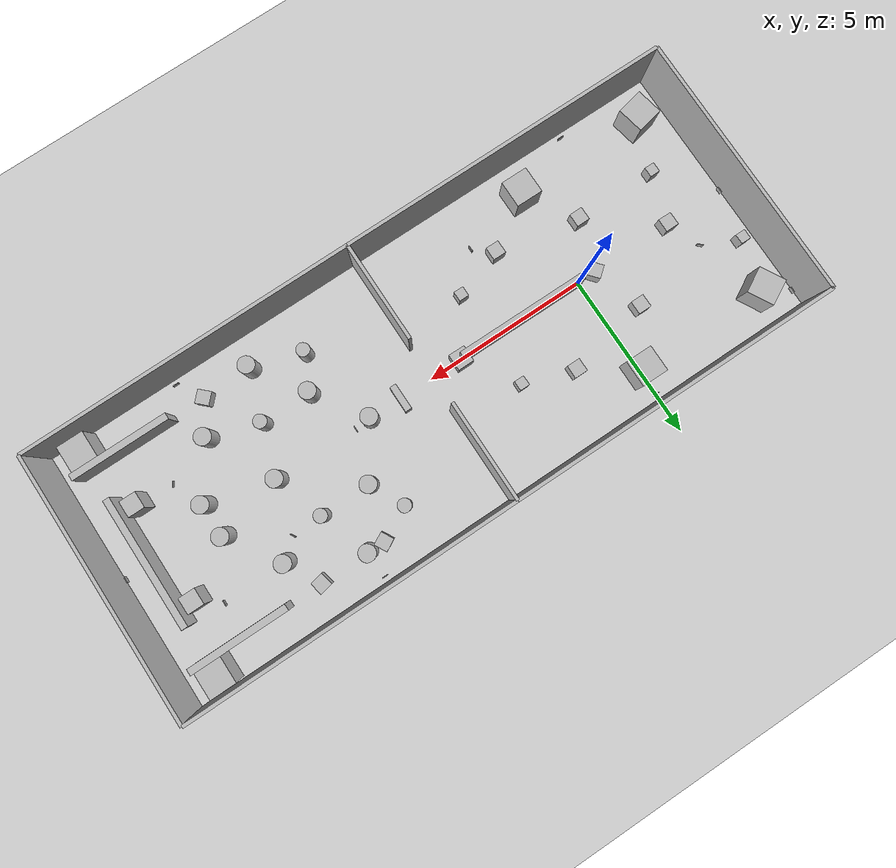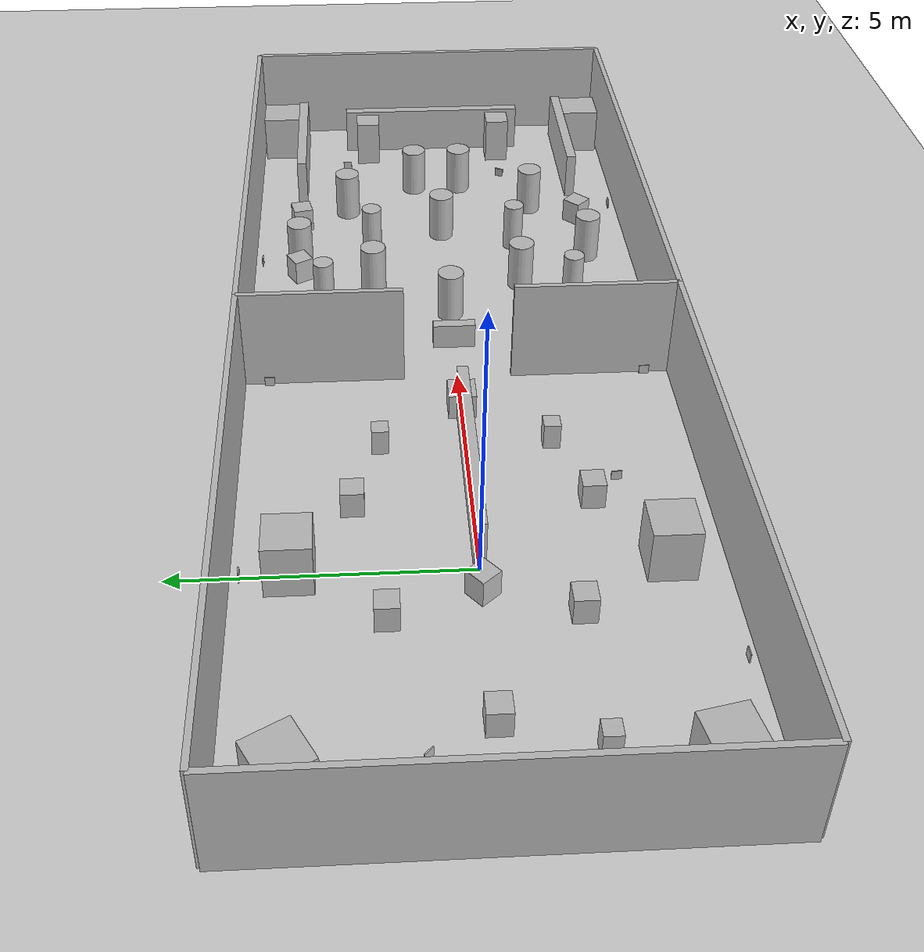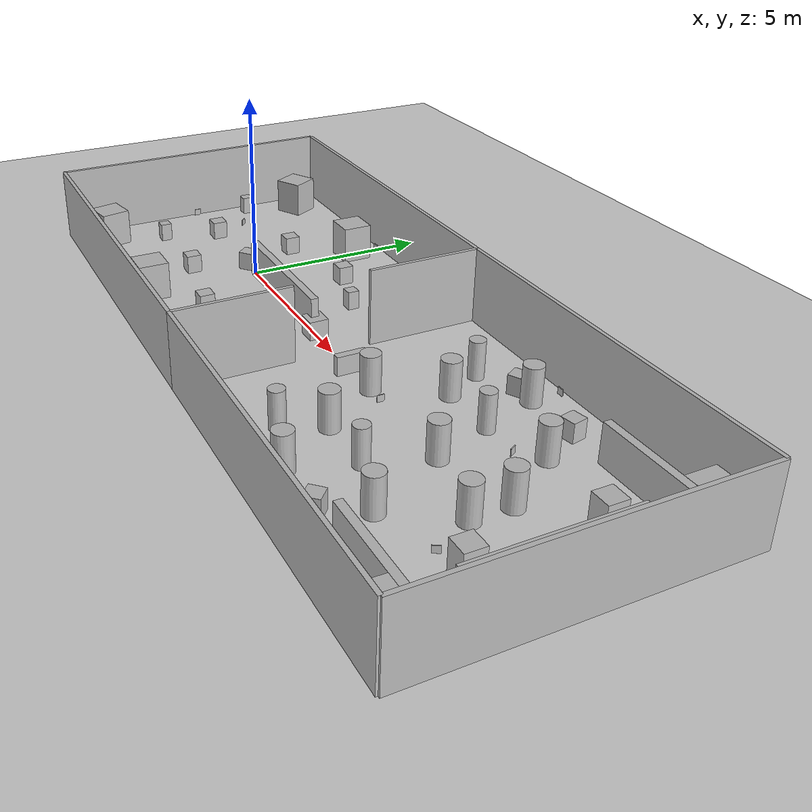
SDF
<?xml version="1.0" ?>
<sdf version="1.6">
  <world name="sar_room_world">

    <plugin name="gazebo_ros_factory" filename="libgazebo_ros_factory.so" />

    <include>
      <uri>model://ground_plane</uri>
    </include>
    <include>
      <uri>model://sun</uri>
    </include>

    <model name="room_structure">
      <static>true</static>
      <link name="walls">
        <pose>0 0 0 0 0 0</pose>
        <collision name="c_walls">
          <geometry>
            <box>
              <size>0.1 0.1 0.1</size>
            </box>
          </geometry>
        </collision>

        <visual name="r1_back">
          <pose>0 4 1 0 0 0</pose>
          <geometry>
            <box>
              <size>10 0.1 2</size>
            </box>
          </geometry>
        </visual>
        <collision name="c_r1_back">
          <pose>0 4 1 0 0 0</pose>
          <geometry>
            <box>
              <size>10 0.1 2</size>
            </box>
          </geometry>
        </collision>

        <visual name="r1_front">
          <pose>0 -4 1 0 0 0</pose>
          <geometry>
            <box>
              <size>10 0.1 2</size>
            </box>
          </geometry>
        </visual>
        <collision name="c_r1_front">
          <pose>0 -4 1 0 0 0</pose>
          <geometry>
            <box>
              <size>10 0.1 2</size>
            </box>
          </geometry>
        </collision>

        <visual name="r1_left">
          <pose>-5 0 1 0 0 0</pose>
          <geometry>
            <box>
              <size>0.1 8 2</size>
            </box>
          </geometry>
        </visual>
        <collision name="c_r1_left">
          <pose>-5 0 1 0 0 0</pose>
          <geometry>
            <box>
              <size>0.1 8 2</size>
            </box>
          </geometry>
        </collision>

        <visual name="r1_right_top">
          <pose>5 2.5 1 0 0 0</pose>
          <geometry>
            <box>
              <size>0.1 3 2</size>
            </box>
          </geometry>
        </visual>
        <collision name="c_r1_right_top">
          <pose>5 2.5 1 0 0 0</pose>
          <geometry>
            <box>
              <size>0.1 3 2</size>
            </box>
          </geometry>
        </collision>

        <visual name="r1_right_bot">
          <pose>5 -2.5 1 0 0 0</pose>
          <geometry>
            <box>
              <size>0.1 3 2</size>
            </box>
          </geometry>
        </visual>
        <collision name="c_r1_right_bot">
          <pose>5 -2.5 1 0 0 0</pose>
          <geometry>
            <box>
              <size>0.1 3 2</size>
            </box>
          </geometry>
        </collision>

        <visual name="r2_far">
          <pose>15 0 1 0 0 0</pose>
          <geometry>
            <box>
              <size>0.1 8 2</size>
            </box>
          </geometry>
        </visual>
        <collision name="c_r2_far">
          <pose>15 0 1 0 0 0</pose>
          <geometry>
            <box>
              <size>0.1 8 2</size>
            </box>
          </geometry>
        </collision>

        <visual name="r2_top">
          <pose>10 4 1 0 0 0</pose>
          <geometry>
            <box>
              <size>10 0.1 2</size>
            </box>
          </geometry>
        </visual>
        <collision name="c_r2_top">
          <pose>10 4 1 0 0 0</pose>
          <geometry>
            <box>
              <size>10 0.1 2</size>
            </box>
          </geometry>
        </collision>

        <visual name="r2_bot">
          <pose>10 -4 1 0 0 0</pose>
          <geometry>
            <box>
              <size>10 0.1 2</size>
            </box>
          </geometry>
        </visual>
        <collision name="c_r2_bot">
          <pose>10 -4 1 0 0 0</pose>
          <geometry>
            <box>
              <size>10 0.1 2</size>
            </box>
          </geometry>
        </collision>
      </link>
    </model>

    <model name="bar3"><static>true</static><link name="l"><pose>2 0 0.5 0 0 1.57</pose><visual name="v"><geometry><box><size>0.2 4 1</size></box></geometry></visual><collision name="c"><geometry><box><size>0.2 4 1</size></box></geometry></collision></link></model>

    <model name="b1"><static>true</static><link name="l"><pose>-4 3 0.5 0 0 0.5</pose><visual name="v"><geometry><box><size>0.8 0.8 1</size></box></geometry></visual><collision name="c"><geometry><box><size>0.8 0.8 1</size></box></geometry></collision></link></model>
    <model name="b2"><static>true</static><link name="l"><pose>-4 -3 0.5 0 0 0.2</pose><visual name="v"><geometry><box><size>0.8 0.8 1</size></box></geometry></visual><collision name="c"><geometry><box><size>0.8 0.8 1</size></box></geometry></collision></link></model>
    <model name="b3"><static>true</static><link name="l"><pose>0 3 0.5 0 0 0</pose><visual name="v"><geometry><box><size>0.8 0.8 1</size></box></geometry></visual><collision name="c"><geometry><box><size>0.8 0.8 1</size></box></geometry></collision></link></model>
    <model name="b4"><static>true</static><link name="l"><pose>0 -3 0.5 0 0 0</pose><visual name="v"><geometry><box><size>0.8 0.8 1</size></box></geometry></visual><collision name="c"><geometry><box><size>0.8 0.8 1</size></box></geometry></collision></link></model>

    <model name="d1"><static>true</static><link name="l"><pose>-3 0 0.25 0 0 0</pose><visual name="v"><geometry><box><size>0.4 0.4 0.5</size></box></geometry></visual><collision name="c"><geometry><box><size>0.4 0.4 0.5</size></box></geometry></collision></link></model>
    <model name="d2"><static>true</static><link name="l"><pose>-1 1.5 0.25 0 0 0</pose><visual name="v"><geometry><box><size>0.4 0.4 0.5</size></box></geometry></visual><collision name="c"><geometry><box><size>0.4 0.4 0.5</size></box></geometry></collision></link></model>
    <model name="d3"><static>true</static><link name="l"><pose>-1 -1.5 0.25 0 0 0</pose><visual name="v"><geometry><box><size>0.4 0.4 0.5</size></box></geometry></visual><collision name="c"><geometry><box><size>0.4 0.4 0.5</size></box></geometry></collision></link></model>
    <model name="d4"><static>true</static><link name="l"><pose>1.5 2 0.25 0 0 0</pose><visual name="v"><geometry><box><size>0.4 0.4 0.5</size></box></geometry></visual><collision name="c"><geometry><box><size>0.4 0.4 0.5</size></box></geometry></collision></link></model>
    <model name="d5"><static>true</static><link name="l"><pose>1.5 -2 0.25 0 0 0</pose><visual name="v"><geometry><box><size>0.4 0.4 0.5</size></box></geometry></visual><collision name="c"><geometry><box><size>0.4 0.4 0.5</size></box></geometry></collision></link></model>
    <model name="d6"><static>true</static><link name="l"><pose>4 0 0.25 0 0 0</pose><visual name="v"><geometry><box><size>0.5 0.5 0.5</size></box></geometry></visual><collision name="c"><geometry><box><size>0.5 0.5 0.5</size></box></geometry></collision></link></model>

    <model name="x1"><static>true</static><link name="l"><pose>-4.5 1.5 0.25 0 0 0</pose><visual name="v"><geometry><box><size>0.3 0.3 0.5</size></box></geometry></visual><collision name="c"><geometry><box><size>0.3 0.3 0.5</size></box></geometry></collision></link></model>
    <model name="x2"><static>true</static><link name="l"><pose>-3.5 -1.5 0.25 0 0 0</pose><visual name="v"><geometry><box><size>0.3 0.3 0.5</size></box></geometry></visual><collision name="c"><geometry><box><size>0.3 0.3 0.5</size></box></geometry></collision></link></model>
    <model name="x3"><static>true</static><link name="l"><pose>-0.5 0 0.25 0 0 0.7</pose><visual name="v"><geometry><box><size>0.4 0.4 0.5</size></box></geometry></visual><collision name="c"><geometry><box><size>0.4 0.4 0.5</size></box></geometry></collision></link></model>
    <model name="x4"><static>true</static><link name="l"><pose>3 1.5 0.25 0 0 0</pose><visual name="v"><geometry><box><size>0.3 0.3 0.5</size></box></geometry></visual><collision name="c"><geometry><box><size>0.3 0.3 0.5</size></box></geometry></collision></link></model>
    <model name="x5"><static>true</static><link name="l"><pose>3 -1.5 0.25 0 0 0</pose><visual name="v"><geometry><box><size>0.3 0.3 0.5</size></box></geometry></visual><collision name="c"><geometry><box><size>0.3 0.3 0.5</size></box></geometry></collision></link></model>
    <model name="door_block"><static>true</static><link name="l"><pose>6 0 0.25 0 0 0</pose><visual name="v"><geometry><box><size>0.2 0.8 0.5</size></box></geometry></visual><collision name="c"><geometry><box><size>0.2 0.8 0.5</size></box></geometry></collision></link></model>

    <model name="c1"><static>true</static><link name="l"><pose>7 0 0.5 0 0 0</pose><visual name="v"><geometry><cylinder><radius>0.25</radius><length>1</length></cylinder></geometry></visual><collision name="c"><geometry><cylinder><radius>0.25</radius><length>1</length></cylinder></geometry></collision></link></model>
    <model name="c2"><static>true</static><link name="l"><pose>8 1.5 0.5 0 0 0</pose><visual name="v"><geometry><cylinder><radius>0.25</radius><length>1</length></cylinder></geometry></visual><collision name="c"><geometry><cylinder><radius>0.25</radius><length>1</length></cylinder></geometry></collision></link></model>
    <model name="c3"><static>true</static><link name="l"><pose>8 -1.5 0.5 0 0 0</pose><visual name="v"><geometry><cylinder><radius>0.25</radius><length>1</length></cylinder></geometry></visual><collision name="c"><geometry><cylinder><radius>0.25</radius><length>1</length></cylinder></geometry></collision></link></model>
    <model name="c4"><static>true</static><link name="l"><pose>9 3 0.5 0 0 0</pose><visual name="v"><geometry><cylinder><radius>0.25</radius><length>1</length></cylinder></geometry></visual><collision name="c"><geometry><cylinder><radius>0.25</radius><length>1</length></cylinder></geometry></collision></link></model>
    <model name="c5"><static>true</static><link name="l"><pose>9 -3 0.5 0 0 0</pose><visual name="v"><geometry><cylinder><radius>0.25</radius><length>1</length></cylinder></geometry></visual><collision name="c"><geometry><cylinder><radius>0.25</radius><length>1</length></cylinder></geometry></collision></link></model>
    <model name="c6"><static>true</static><link name="l"><pose>10 0 0.5 0 0 0</pose><visual name="v"><geometry><cylinder><radius>0.25</radius><length>1</length></cylinder></geometry></visual><collision name="c"><geometry><cylinder><radius>0.25</radius><length>1</length></cylinder></geometry></collision></link></model>
    <model name="c7"><static>true</static><link name="l"><pose>11 2 0.5 0 0 0</pose><visual name="v"><geometry><cylinder><radius>0.25</radius><length>1</length></cylinder></geometry></visual><collision name="c"><geometry><cylinder><radius>0.25</radius><length>1</length></cylinder></geometry></collision></link></model>
    <model name="c8"><static>true</static><link name="l"><pose>11 -2 0.5 0 0 0</pose><visual name="v"><geometry><cylinder><radius>0.25</radius><length>1</length></cylinder></geometry></visual><collision name="c"><geometry><cylinder><radius>0.25</radius><length>1</length></cylinder></geometry></collision></link></model>
    <model name="c9"><static>true</static><link name="l"><pose>12 0.5 0.5 0 0 0</pose><visual name="v"><geometry><cylinder><radius>0.25</radius><length>1</length></cylinder></geometry></visual><collision name="c"><geometry><cylinder><radius>0.25</radius><length>1</length></cylinder></geometry></collision></link></model>
    <model name="c10"><static>true</static><link name="l"><pose>12 -0.5 0.5 0 0 0</pose><visual name="v"><geometry><cylinder><radius>0.25</radius><length>1</length></cylinder></geometry></visual><collision name="c"><geometry><cylinder><radius>0.25</radius><length>1</length></cylinder></geometry></collision></link></model>

    <model name="c11"><static>true</static><link name="l"><pose>7.5 2.5 0.5 0 0 0</pose><visual name="v"><geometry><cylinder><radius>0.2</radius><length>1</length></cylinder></geometry></visual><collision name="c"><geometry><cylinder><radius>0.2</radius><length>1</length></cylinder></geometry></collision></link></model>
    <model name="c12"><static>true</static><link name="l"><pose>7.5 -2.5 0.5 0 0 0</pose><visual name="v"><geometry><cylinder><radius>0.2</radius><length>1</length></cylinder></geometry></visual><collision name="c"><geometry><cylinder><radius>0.2</radius><length>1</length></cylinder></geometry></collision></link></model>
    <model name="c13"><static>true</static><link name="l"><pose>9.5 1.5 0.5 0 0 0</pose><visual name="v"><geometry><cylinder><radius>0.2</radius><length>1</length></cylinder></geometry></visual><collision name="c"><geometry><cylinder><radius>0.2</radius><length>1</length></cylinder></geometry></collision></link></model>
    <model name="c14"><static>true</static><link name="l"><pose>9.5 -1.5 0.5 0 0 0</pose><visual name="v"><geometry><cylinder><radius>0.2</radius><length>1</length></cylinder></geometry></visual><collision name="c"><geometry><cylinder><radius>0.2</radius><length>1</length></cylinder></geometry></collision></link></model>

    <model name="zw1"><static>true</static><link name="l"><pose>13 3 0.5 0 0 1.57</pose><visual name="v"><geometry><box><size>0.2 3 1</size></box></geometry></visual><collision name="c"><geometry><box><size>0.2 3 1</size></box></geometry></collision></link></model>
    <model name="zw2"><static>true</static><link name="l"><pose>13 -3 0.5 0 0 1.57</pose><visual name="v"><geometry><box><size>0.2 3 1</size></box></geometry></visual><collision name="c"><geometry><box><size>0.2 3 1</size></box></geometry></collision></link></model>
    <model name="zw3"><static>true</static><link name="l"><pose>14 0 0.5 0 0 0</pose><visual name="v"><geometry><box><size>0.2 4 1</size></box></geometry></visual><collision name="c"><geometry><box><size>0.2 4 1</size></box></geometry></collision></link></model>

    <model name="fb1"><static>true</static><link name="l"><pose>14 3.5 0.5 0 0 0</pose><visual name="v"><geometry><box><size>0.8 0.8 1</size></box></geometry></visual><collision name="c"><geometry><box><size>0.8 0.8 1</size></box></geometry></collision></link></model>
    <model name="fb2"><static>true</static><link name="l"><pose>14 -3.5 0.5 0 0 0</pose><visual name="v"><geometry><box><size>0.8 0.8 1</size></box></geometry></visual><collision name="c"><geometry><box><size>0.8 0.8 1</size></box></geometry></collision></link></model>
    <model name="fb3"><static>true</static><link name="l"><pose>13.5 1.5 0.5 0 0 0</pose><visual name="v"><geometry><box><size>0.5 0.5 1</size></box></geometry></visual><collision name="c"><geometry><box><size>0.5 0.5 1</size></box></geometry></collision></link></model>
    <model name="fb4"><static>true</static><link name="l"><pose>13.5 -1.5 0.5 0 0 0</pose><visual name="v"><geometry><box><size>0.5 0.5 1</size></box></geometry></visual><collision name="c"><geometry><box><size>0.5 0.5 1</size></box></geometry></collision></link></model>

    <model name="r2x1"><static>true</static><link name="l"><pose>8.5 3 0.25 0 0 0.5</pose><visual name="v"><geometry><box><size>0.4 0.4 0.5</size></box></geometry></visual><collision name="c"><geometry><box><size>0.4 0.4 0.5</size></box></geometry></collision></link></model>
    <model name="r2x2"><static>true</static><link name="l"><pose>10.5 3 0.25 0 0 0.2</pose><visual name="v"><geometry><box><size>0.4 0.4 0.5</size></box></geometry></visual><collision name="c"><geometry><box><size>0.4 0.4 0.5</size></box></geometry></collision></link></model>
    <model name="r2x3"><static>true</static><link name="l"><pose>10.5 -3 0.25 0 0 0.8</pose><visual name="v"><geometry><box><size>0.4 0.4 0.5</size></box></geometry></visual><collision name="c"><geometry><box><size>0.4 0.4 0.5</size></box></geometry></collision></link></model>
<include><uri>model://qr_cube</uri><name>qr_01</name><pose>-4.9 0 0.09 0 0 0</pose></include>
    <include><uri>model://qr_cube</uri><name>qr_02</name><pose>-4.9 3.5 0.09 0 0 0</pose></include>
    <include><uri>model://qr_cube</uri><name>qr_03</name><pose>-2 -3.8 0.09 0 0 1.57</pose></include>
    <include><uri>model://qr_cube</uri><name>qr_04</name><pose>0 3.8 0.09 0 0 -1.57</pose></include>
    <include><uri>model://qr_cube</uri><name>qr_05</name><pose>2 -2.5 0.09 0 0 3.14</pose></include>
    <include><uri>model://qr_cube</uri><name>qr_06</name><pose>4.9 3.5 0.09 0 0 3.14</pose></include>
    <include><uri>model://qr_cube</uri><name>qr_07</name><pose>4.9 -3.5 0.09 0 0 3.14</pose></include>
    <include><uri>model://qr_cube</uri><name>qr_08</name><pose>-3.5 1.0 0.09 0 0 0.78</pose></include>

    <include><uri>model://qr_cube</uri><name>qr_09</name><pose>7.5 0 0.09 0 0 0</pose></include>
    <include><uri>model://qr_cube</uri><name>qr_10</name><pose>9 3.8 0.09 0 0 -1.57</pose></include>
    <include><uri>model://qr_cube</uri><name>qr_11</name><pose>11 -3.8 0.09 0 0 1.57</pose></include>
    <include><uri>model://qr_cube</uri><name>qr_12</name><pose>13 2.0 0.09 0 0 3.14</pose></include>
    <include><uri>model://qr_cube</uri><name>qr_13</name><pose>14.9 0 0.09 0 0 3.14</pose></include>
    <include><uri>model://qr_cube</uri><name>qr_14</name><pose>10.5 1.5 0.09 0 0 0.5</pose></include>
    <include><uri>model://qr_cube</uri><name>qr_15</name><pose>12.5 -1.5 0.09 0 0 -0.5</pose></include>
  </world>
</sdf>

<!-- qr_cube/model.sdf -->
<sdf version="1.6">
  <model name="qr_cube">
    <static>true</static>
    <link name="link">
      <collision name="collision">
        <geometry>
          <box><size>0.02 0.18 0.18</size></box>
        </geometry>
      </collision>
      <visual name="visual">
        <geometry>
          <box><size>0.02 0.18 0.18</size></box>
        </geometry>
        <material>
          <script>
            <uri>model://qr_cube/materials/scripts</uri>
            <uri>model://qr_cube/materials/textures</uri>
            <name>QRCode/Marker</name>
          </script>
        </material>
      </visual>
    </link>
  </model>
</sdf>
